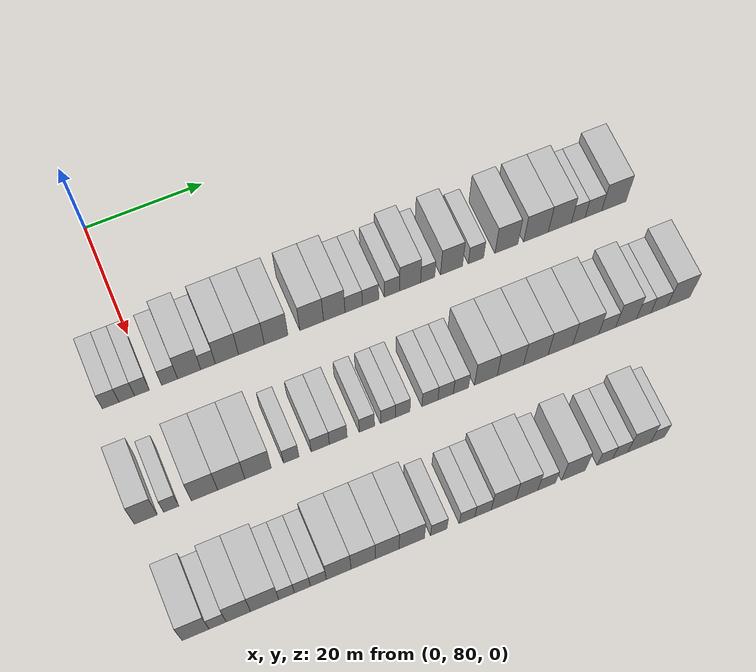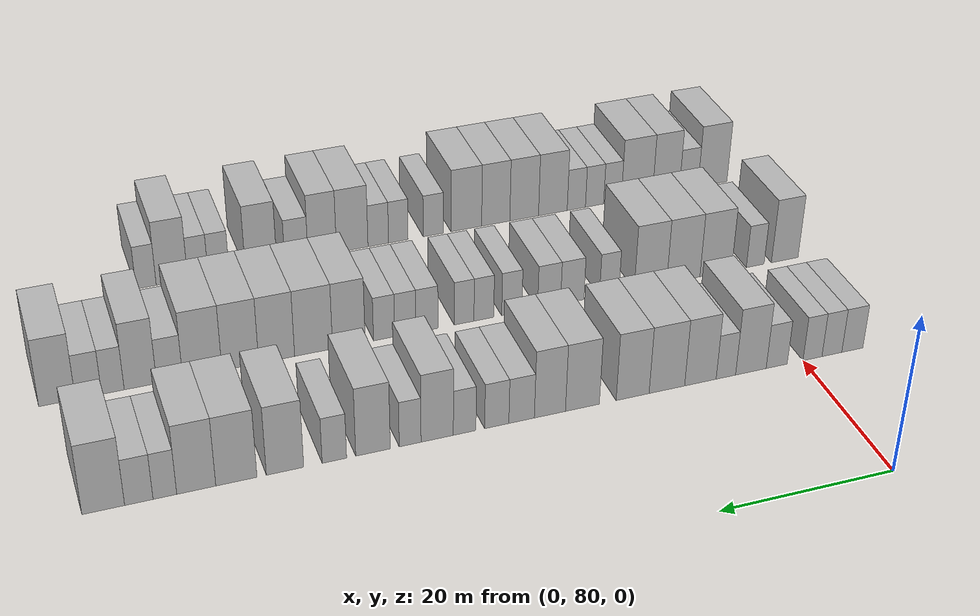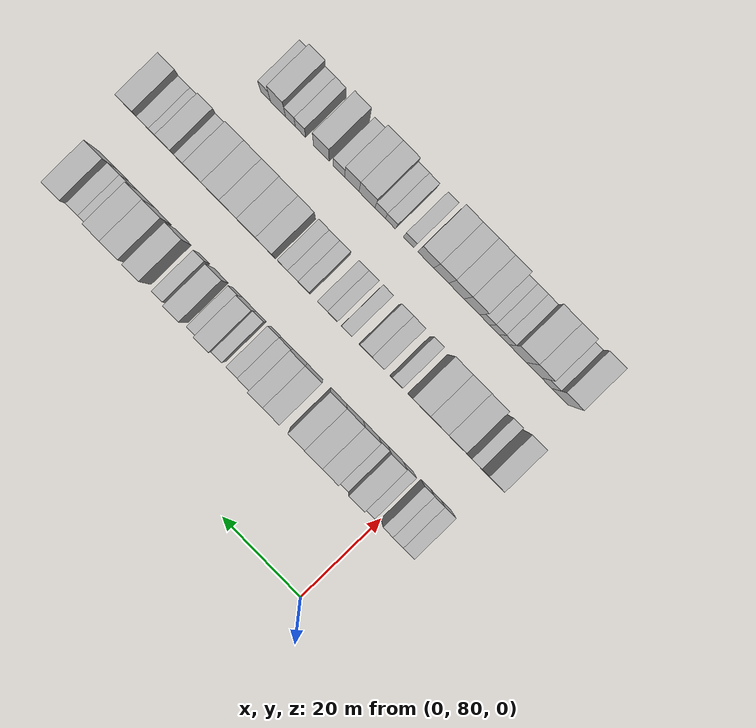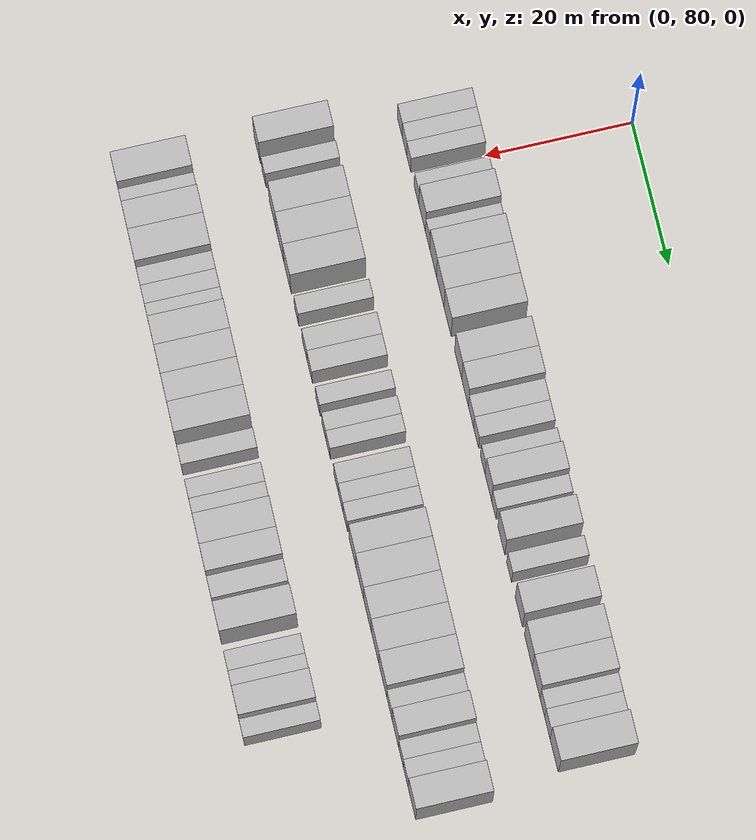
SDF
<sdf version="1.6">
 <world name="default">
  <model name="building_108">
   <static>1</static>
   <pose>25.0000 73.7068 0 0.000000 0.000000 0.000000</pose>
   <link name="link">
    <pose>0 0 3.00 0 0 0</pose>
    <collision name="collision"><geometry><box><size>10.0000 2.7107 6.0000</size></box></geometry></collision>
    <visual name="visual">
     <cast_shadows>0</cast_shadows>
     <geometry><box><size>10.0000 2.7107 6.0000</size></box></geometry>
     <material>
      <script>
       <uri>model://HANNAS_wall/materials/scripts</uri>
       <uri>model://HANNAS_wall/materials/textures</uri>
       <name>vrc/HANNAS_wall</name>
      </script>
     </material>
    </visual>
   </link>
  </model>
  <model name="building_109">
   <static>1</static>
   <pose>25.0000 76.3299 0 0.000000 0.000000 0.000000</pose>
   <link name="link">
    <pose>0 0 3.00 0 0 0</pose>
    <collision name="collision"><geometry><box><size>10.0000 2.5353 6.0000</size></box></geometry></collision>
    <visual name="visual">
     <cast_shadows>0</cast_shadows>
     <geometry><box><size>10.0000 2.5353 6.0000</size></box></geometry>
     <material>
      <script>
       <uri>model://HANNAS_wall/materials/scripts</uri>
       <uri>model://HANNAS_wall/materials/textures</uri>
       <name>vrc/HANNAS_wall</name>
      </script>
     </material>
    </visual>
   </link>
  </model>
  <model name="building_110">
   <static>1</static>
   <pose>25.0000 78.8004 0 0.000000 0.000000 0.000000</pose>
   <link name="link">
    <pose>0 0 3.00 0 0 0</pose>
    <collision name="collision"><geometry><box><size>10.0000 2.4057 6.0000</size></box></geometry></collision>
    <visual name="visual">
     <cast_shadows>0</cast_shadows>
     <geometry><box><size>10.0000 2.4057 6.0000</size></box></geometry>
     <material>
      <script>
       <uri>model://HANNAS_wall/materials/scripts</uri>
       <uri>model://HANNAS_wall/materials/textures</uri>
       <name>vrc/HANNAS_wall</name>
      </script>
     </material>
    </visual>
   </link>
  </model>
  <model name="building_111">
   <static>1</static>
   <pose>25.0000 83.3237 0 0.000000 0.000000 0.000000</pose>
   <link name="link">
    <pose>0 0 3.00 0 0 0</pose>
    <collision name="collision"><geometry><box><size>10.0000 2.6409 6.0000</size></box></geometry></collision>
    <visual name="visual">
     <cast_shadows>0</cast_shadows>
     <geometry><box><size>10.0000 2.6409 6.0000</size></box></geometry>
     <material>
      <script>
       <uri>model://HANNAS_wall/materials/scripts</uri>
       <uri>model://HANNAS_wall/materials/textures</uri>
       <name>vrc/HANNAS_wall</name>
      </script>
     </material>
    </visual>
   </link>
  </model>
  <model name="building_112">
   <static>1</static>
   <pose>25.0000 86.5483 0 0.000000 0.000000 0.000000</pose>
   <link name="link">
    <pose>0 0 4.50 0 0 0</pose>
    <collision name="collision"><geometry><box><size>10.0000 3.8083 9.0000</size></box></geometry></collision>
    <visual name="visual">
     <cast_shadows>0</cast_shadows>
     <geometry><box><size>10.0000 3.8083 9.0000</size></box></geometry>
     <material>
      <script>
       <uri>model://HANNAS_wall/materials/scripts</uri>
       <uri>model://HANNAS_wall/materials/textures</uri>
       <name>vrc/HANNAS_wall</name>
      </script>
     </material>
    </visual>
   </link>
  </model>
  <model name="building_113">
   <static>1</static>
   <pose>25.0000 89.6528 0 0.000000 0.000000 0.000000</pose>
   <link name="link">
    <pose>0 0 3.00 0 0 0</pose>
    <collision name="collision"><geometry><box><size>10.0000 2.4007 6.0000</size></box></geometry></collision>
    <visual name="visual">
     <cast_shadows>0</cast_shadows>
     <geometry><box><size>10.0000 2.4007 6.0000</size></box></geometry>
     <material>
      <script>
       <uri>model://HANNAS_wall/materials/scripts</uri>
       <uri>model://HANNAS_wall/materials/textures</uri>
       <name>vrc/HANNAS_wall</name>
      </script>
     </material>
    </visual>
   </link>
  </model>
  <model name="building_114">
   <static>1</static>
   <pose>25.0000 92.7837 0 0.000000 0.000000 0.000000</pose>
   <link name="link">
    <pose>0 0 4.50 0 0 0</pose>
    <collision name="collision"><geometry><box><size>10.0000 3.8611 9.0000</size></box></geometry></collision>
    <visual name="visual">
     <cast_shadows>0</cast_shadows>
     <geometry><box><size>10.0000 3.8611 9.0000</size></box></geometry>
     <material>
      <script>
       <uri>model://HANNAS_wall/materials/scripts</uri>
       <uri>model://HANNAS_wall/materials/textures</uri>
       <name>vrc/HANNAS_wall</name>
      </script>
     </material>
    </visual>
   </link>
  </model>
  <model name="building_115">
   <static>1</static>
   <pose>25.0000 96.8676 0 0.000000 0.000000 0.000000</pose>
   <link name="link">
    <pose>0 0 4.50 0 0 0</pose>
    <collision name="collision"><geometry><box><size>10.0000 4.3067 9.0000</size></box></geometry></collision>
    <visual name="visual">
     <cast_shadows>0</cast_shadows>
     <geometry><box><size>10.0000 4.3067 9.0000</size></box></geometry>
     <material>
      <script>
       <uri>model://HANNAS_wall/materials/scripts</uri>
       <uri>model://HANNAS_wall/materials/textures</uri>
       <name>vrc/HANNAS_wall</name>
      </script>
     </material>
    </visual>
   </link>
  </model>
  <model name="building_116">
   <static>1</static>
   <pose>25.0000 100.9973 0 0.000000 0.000000 0.000000</pose>
   <link name="link">
    <pose>0 0 4.50 0 0 0</pose>
    <collision name="collision"><geometry><box><size>10.0000 3.9528 9.0000</size></box></geometry></collision>
    <visual name="visual">
     <cast_shadows>0</cast_shadows>
     <geometry><box><size>10.0000 3.9528 9.0000</size></box></geometry>
     <material>
      <script>
       <uri>model://HANNAS_wall/materials/scripts</uri>
       <uri>model://HANNAS_wall/materials/textures</uri>
       <name>vrc/HANNAS_wall</name>
      </script>
     </material>
    </visual>
   </link>
  </model>
  <model name="building_117">
   <static>1</static>
   <pose>25.0000 106.9747 0 0.000000 0.000000 0.000000</pose>
   <link name="link">
    <pose>0 0 4.50 0 0 0</pose>
    <collision name="collision"><geometry><box><size>10.0000 4.0019 9.0000</size></box></geometry></collision>
    <visual name="visual">
     <cast_shadows>0</cast_shadows>
     <geometry><box><size>10.0000 4.0019 9.0000</size></box></geometry>
     <material>
      <script>
       <uri>model://HANNAS_wall/materials/scripts</uri>
       <uri>model://HANNAS_wall/materials/textures</uri>
       <name>vrc/HANNAS_wall</name>
      </script>
     </material>
    </visual>
   </link>
  </model>
  <model name="building_118">
   <static>1</static>
   <pose>25.0000 110.7939 0 0.000000 0.000000 0.000000</pose>
   <link name="link">
    <pose>0 0 4.50 0 0 0</pose>
    <collision name="collision"><geometry><box><size>10.0000 3.6364 9.0000</size></box></geometry></collision>
    <visual name="visual">
     <cast_shadows>0</cast_shadows>
     <geometry><box><size>10.0000 3.6364 9.0000</size></box></geometry>
     <material>
      <script>
       <uri>model://HANNAS_wall/materials/scripts</uri>
       <uri>model://HANNAS_wall/materials/textures</uri>
       <name>vrc/HANNAS_wall</name>
      </script>
     </material>
    </visual>
   </link>
  </model>
  <model name="building_119">
   <static>1</static>
   <pose>25.0000 114.0875 0 0.000000 0.000000 0.000000</pose>
   <link name="link">
    <pose>0 0 3.00 0 0 0</pose>
    <collision name="collision"><geometry><box><size>10.0000 2.9508 6.0000</size></box></geometry></collision>
    <visual name="visual">
     <cast_shadows>0</cast_shadows>
     <geometry><box><size>10.0000 2.9508 6.0000</size></box></geometry>
     <material>
      <script>
       <uri>model://HANNAS_wall/materials/scripts</uri>
       <uri>model://HANNAS_wall/materials/textures</uri>
       <name>vrc/HANNAS_wall</name>
      </script>
     </material>
    </visual>
   </link>
  </model>
  <model name="building_120">
   <static>1</static>
   <pose>25.0000 116.9517 0 0.000000 0.000000 0.000000</pose>
   <link name="link">
    <pose>0 0 3.00 0 0 0</pose>
    <collision name="collision"><geometry><box><size>10.0000 2.7777 6.0000</size></box></geometry></collision>
    <visual name="visual">
     <cast_shadows>0</cast_shadows>
     <geometry><box><size>10.0000 2.7777 6.0000</size></box></geometry>
     <material>
      <script>
       <uri>model://HANNAS_wall/materials/scripts</uri>
       <uri>model://HANNAS_wall/materials/textures</uri>
       <name>vrc/HANNAS_wall</name>
      </script>
     </material>
    </visual>
   </link>
  </model>
  <model name="building_121">
   <static>1</static>
   <pose>25.0000 120.6244 0 0.000000 0.000000 0.000000</pose>
   <link name="link">
    <pose>0 0 3.00 0 0 0</pose>
    <collision name="collision"><geometry><box><size>10.0000 2.5677 6.0000</size></box></geometry></collision>
    <visual name="visual">
     <cast_shadows>0</cast_shadows>
     <geometry><box><size>10.0000 2.5677 6.0000</size></box></geometry>
     <material>
      <script>
       <uri>model://HANNAS_wall/materials/scripts</uri>
       <uri>model://HANNAS_wall/materials/textures</uri>
       <name>vrc/HANNAS_wall</name>
      </script>
     </material>
    </visual>
   </link>
  </model>
  <model name="building_122">
   <static>1</static>
   <pose>25.0000 123.7289 0 0.000000 0.000000 0.000000</pose>
   <link name="link">
    <pose>0 0 4.50 0 0 0</pose>
    <collision name="collision"><geometry><box><size>10.0000 3.6414 9.0000</size></box></geometry></collision>
    <visual name="visual">
     <cast_shadows>0</cast_shadows>
     <geometry><box><size>10.0000 3.6414 9.0000</size></box></geometry>
     <material>
      <script>
       <uri>model://HANNAS_wall/materials/scripts</uri>
       <uri>model://HANNAS_wall/materials/textures</uri>
       <name>vrc/HANNAS_wall</name>
      </script>
     </material>
    </visual>
   </link>
  </model>
  <model name="building_123">
   <static>1</static>
   <pose>25.0000 126.7699 0 0.000000 0.000000 0.000000</pose>
   <link name="link">
    <pose>0 0 3.00 0 0 0</pose>
    <collision name="collision"><geometry><box><size>10.0000 2.4405 6.0000</size></box></geometry></collision>
    <visual name="visual">
     <cast_shadows>0</cast_shadows>
     <geometry><box><size>10.0000 2.4405 6.0000</size></box></geometry>
     <material>
      <script>
       <uri>model://HANNAS_wall/materials/scripts</uri>
       <uri>model://HANNAS_wall/materials/textures</uri>
       <name>vrc/HANNAS_wall</name>
      </script>
     </material>
    </visual>
   </link>
  </model>
  <model name="building_124">
   <static>1</static>
   <pose>25.0000 130.9013 0 0.000000 0.000000 0.000000</pose>
   <link name="link">
    <pose>0 0 4.50 0 0 0</pose>
    <collision name="collision"><geometry><box><size>10.0000 3.8223 9.0000</size></box></geometry></collision>
    <visual name="visual">
     <cast_shadows>0</cast_shadows>
     <geometry><box><size>10.0000 3.8223 9.0000</size></box></geometry>
     <material>
      <script>
       <uri>model://HANNAS_wall/materials/scripts</uri>
       <uri>model://HANNAS_wall/materials/textures</uri>
       <name>vrc/HANNAS_wall</name>
      </script>
     </material>
    </visual>
   </link>
  </model>
  <model name="building_125">
   <static>1</static>
   <pose>25.0000 135.1494 0 0.000000 0.000000 0.000000</pose>
   <link name="link">
    <pose>0 0 3.00 0 0 0</pose>
    <collision name="collision"><geometry><box><size>10.0000 2.6740 6.0000</size></box></geometry></collision>
    <visual name="visual">
     <cast_shadows>0</cast_shadows>
     <geometry><box><size>10.0000 2.6740 6.0000</size></box></geometry>
     <material>
      <script>
       <uri>model://HANNAS_wall/materials/scripts</uri>
       <uri>model://HANNAS_wall/materials/textures</uri>
       <name>vrc/HANNAS_wall</name>
      </script>
     </material>
    </visual>
   </link>
  </model>
  <model name="building_126">
   <static>1</static>
   <pose>25.0000 140.5015 0 0.000000 0.000000 0.000000</pose>
   <link name="link">
    <pose>0 0 4.50 0 0 0</pose>
    <collision name="collision"><geometry><box><size>10.0000 4.0302 9.0000</size></box></geometry></collision>
    <visual name="visual">
     <cast_shadows>0</cast_shadows>
     <geometry><box><size>10.0000 4.0302 9.0000</size></box></geometry>
     <material>
      <script>
       <uri>model://HANNAS_wall/materials/scripts</uri>
       <uri>model://HANNAS_wall/materials/textures</uri>
       <name>vrc/HANNAS_wall</name>
      </script>
     </material>
    </visual>
   </link>
  </model>
  <model name="building_127">
   <static>1</static>
   <pose>25.0000 145.7011 0 0.000000 0.000000 0.000000</pose>
   <link name="link">
    <pose>0 0 4.50 0 0 0</pose>
    <collision name="collision"><geometry><box><size>10.0000 4.3690 9.0000</size></box></geometry></collision>
    <visual name="visual">
     <cast_shadows>0</cast_shadows>
     <geometry><box><size>10.0000 4.3690 9.0000</size></box></geometry>
     <material>
      <script>
       <uri>model://HANNAS_wall/materials/scripts</uri>
       <uri>model://HANNAS_wall/materials/textures</uri>
       <name>vrc/HANNAS_wall</name>
      </script>
     </material>
    </visual>
   </link>
  </model>
  <model name="building_128">
   <static>1</static>
   <pose>25.0000 149.9332 0 0.000000 0.000000 0.000000</pose>
   <link name="link">
    <pose>0 0 4.50 0 0 0</pose>
    <collision name="collision"><geometry><box><size>10.0000 4.0951 9.0000</size></box></geometry></collision>
    <visual name="visual">
     <cast_shadows>0</cast_shadows>
     <geometry><box><size>10.0000 4.0951 9.0000</size></box></geometry>
     <material>
      <script>
       <uri>model://HANNAS_wall/materials/scripts</uri>
       <uri>model://HANNAS_wall/materials/textures</uri>
       <name>vrc/HANNAS_wall</name>
      </script>
     </material>
    </visual>
   </link>
  </model>
  <model name="building_129">
   <static>1</static>
   <pose>25.0000 153.2146 0 0.000000 0.000000 0.000000</pose>
   <link name="link">
    <pose>0 0 3.00 0 0 0</pose>
    <collision name="collision"><geometry><box><size>10.0000 2.4677 6.0000</size></box></geometry></collision>
    <visual name="visual">
     <cast_shadows>0</cast_shadows>
     <geometry><box><size>10.0000 2.4677 6.0000</size></box></geometry>
     <material>
      <script>
       <uri>model://HANNAS_wall/materials/scripts</uri>
       <uri>model://HANNAS_wall/materials/textures</uri>
       <name>vrc/HANNAS_wall</name>
      </script>
     </material>
    </visual>
   </link>
  </model>
  <model name="building_130">
   <static>1</static>
   <pose>25.0000 155.9123 0 0.000000 0.000000 0.000000</pose>
   <link name="link">
    <pose>0 0 3.00 0 0 0</pose>
    <collision name="collision"><geometry><box><size>10.0000 2.9278 6.0000</size></box></geometry></collision>
    <visual name="visual">
     <cast_shadows>0</cast_shadows>
     <geometry><box><size>10.0000 2.9278 6.0000</size></box></geometry>
     <material>
      <script>
       <uri>model://HANNAS_wall/materials/scripts</uri>
       <uri>model://HANNAS_wall/materials/textures</uri>
       <name>vrc/HANNAS_wall</name>
      </script>
     </material>
    </visual>
   </link>
  </model>
  <model name="building_131">
   <static>1</static>
   <pose>25.0000 159.5627 0 0.000000 0.000000 0.000000</pose>
   <link name="link">
    <pose>0 0 4.50 0 0 0</pose>
    <collision name="collision"><geometry><box><size>10.0000 4.3728 9.0000</size></box></geometry></collision>
    <visual name="visual">
     <cast_shadows>0</cast_shadows>
     <geometry><box><size>10.0000 4.3728 9.0000</size></box></geometry>
     <material>
      <script>
       <uri>model://HANNAS_wall/materials/scripts</uri>
       <uri>model://HANNAS_wall/materials/textures</uri>
       <name>vrc/HANNAS_wall</name>
      </script>
     </material>
    </visual>
   </link>
  </model>
  <model name="building_280">
   <static>1</static>
   <pose>44.0000 72.5005 0 0.000000 0.000000 0.000000</pose>
   <link name="link">
    <pose>0 0 4.50 0 0 0</pose>
    <collision name="collision"><geometry><box><size>10.0000 3.6355 9.0000</size></box></geometry></collision>
    <visual name="visual">
     <cast_shadows>0</cast_shadows>
     <geometry><box><size>10.0000 3.6355 9.0000</size></box></geometry>
     <material>
      <script>
       <uri>model://HANNAS_wall/materials/scripts</uri>
       <uri>model://HANNAS_wall/materials/textures</uri>
       <name>vrc/HANNAS_wall</name>
      </script>
     </material>
    </visual>
   </link>
  </model>
  <model name="building_281">
   <static>1</static>
   <pose>44.0000 76.5206 0 0.000000 0.000000 0.000000</pose>
   <link name="link">
    <pose>0 0 3.00 0 0 0</pose>
    <collision name="collision"><geometry><box><size>10.0000 2.4048 6.0000</size></box></geometry></collision>
    <visual name="visual">
     <cast_shadows>0</cast_shadows>
     <geometry><box><size>10.0000 2.4048 6.0000</size></box></geometry>
     <material>
      <script>
       <uri>model://HANNAS_wall/materials/scripts</uri>
       <uri>model://HANNAS_wall/materials/textures</uri>
       <name>vrc/HANNAS_wall</name>
      </script>
     </material>
    </visual>
   </link>
  </model>
  <model name="building_282">
   <static>1</static>
   <pose>44.0000 81.8365 0 0.000000 0.000000 0.000000</pose>
   <link name="link">
    <pose>0 0 4.50 0 0 0</pose>
    <collision name="collision"><geometry><box><size>10.0000 4.2271 9.0000</size></box></geometry></collision>
    <visual name="visual">
     <cast_shadows>0</cast_shadows>
     <geometry><box><size>10.0000 4.2271 9.0000</size></box></geometry>
     <material>
      <script>
       <uri>model://HANNAS_wall/materials/scripts</uri>
       <uri>model://HANNAS_wall/materials/textures</uri>
       <name>vrc/HANNAS_wall</name>
      </script>
     </material>
    </visual>
   </link>
  </model>
  <model name="building_283">
   <static>1</static>
   <pose>44.0000 86.1458 0 0.000000 0.000000 0.000000</pose>
   <link name="link">
    <pose>0 0 4.50 0 0 0</pose>
    <collision name="collision"><geometry><box><size>10.0000 4.3913 9.0000</size></box></geometry></collision>
    <visual name="visual">
     <cast_shadows>0</cast_shadows>
     <geometry><box><size>10.0000 4.3913 9.0000</size></box></geometry>
     <material>
      <script>
       <uri>model://HANNAS_wall/materials/scripts</uri>
       <uri>model://HANNAS_wall/materials/textures</uri>
       <name>vrc/HANNAS_wall</name>
      </script>
     </material>
    </visual>
   </link>
  </model>
  <model name="building_284">
   <static>1</static>
   <pose>44.0000 90.4707 0 0.000000 0.000000 0.000000</pose>
   <link name="link">
    <pose>0 0 4.50 0 0 0</pose>
    <collision name="collision"><geometry><box><size>10.0000 4.2586 9.0000</size></box></geometry></collision>
    <visual name="visual">
     <cast_shadows>0</cast_shadows>
     <geometry><box><size>10.0000 4.2586 9.0000</size></box></geometry>
     <material>
      <script>
       <uri>model://HANNAS_wall/materials/scripts</uri>
       <uri>model://HANNAS_wall/materials/textures</uri>
       <name>vrc/HANNAS_wall</name>
      </script>
     </material>
    </visual>
   </link>
  </model>
  <model name="building_285">
   <static>1</static>
   <pose>44.0000 95.8546 0 0.000000 0.000000 0.000000</pose>
   <link name="link">
    <pose>0 0 3.00 0 0 0</pose>
    <collision name="collision"><geometry><box><size>10.0000 2.5091 6.0000</size></box></geometry></collision>
    <visual name="visual">
     <cast_shadows>0</cast_shadows>
     <geometry><box><size>10.0000 2.5091 6.0000</size></box></geometry>
     <material>
      <script>
       <uri>model://HANNAS_wall/materials/scripts</uri>
       <uri>model://HANNAS_wall/materials/textures</uri>
       <name>vrc/HANNAS_wall</name>
      </script>
     </material>
    </visual>
   </link>
  </model>
  <model name="building_286">
   <static>1</static>
   <pose>44.0000 100.6001 0 0.000000 0.000000 0.000000</pose>
   <link name="link">
    <pose>0 0 3.00 0 0 0</pose>
    <collision name="collision"><geometry><box><size>10.0000 2.9819 6.0000</size></box></geometry></collision>
    <visual name="visual">
     <cast_shadows>0</cast_shadows>
     <geometry><box><size>10.0000 2.9819 6.0000</size></box></geometry>
     <material>
      <script>
       <uri>model://HANNAS_wall/materials/scripts</uri>
       <uri>model://HANNAS_wall/materials/textures</uri>
       <name>vrc/HANNAS_wall</name>
      </script>
     </material>
    </visual>
   </link>
  </model>
  <model name="building_287">
   <static>1</static>
   <pose>44.0000 103.5478 0 0.000000 0.000000 0.000000</pose>
   <link name="link">
    <pose>0 0 3.00 0 0 0</pose>
    <collision name="collision"><geometry><box><size>10.0000 2.9135 6.0000</size></box></geometry></collision>
    <visual name="visual">
     <cast_shadows>0</cast_shadows>
     <geometry><box><size>10.0000 2.9135 6.0000</size></box></geometry>
     <material>
      <script>
       <uri>model://HANNAS_wall/materials/scripts</uri>
       <uri>model://HANNAS_wall/materials/textures</uri>
       <name>vrc/HANNAS_wall</name>
      </script>
     </material>
    </visual>
   </link>
  </model>
  <model name="building_288">
   <static>1</static>
   <pose>44.0000 108.2622 0 0.000000 0.000000 0.000000</pose>
   <link name="link">
    <pose>0 0 3.00 0 0 0</pose>
    <collision name="collision"><geometry><box><size>10.0000 2.5154 6.0000</size></box></geometry></collision>
    <visual name="visual">
     <cast_shadows>0</cast_shadows>
     <geometry><box><size>10.0000 2.5154 6.0000</size></box></geometry>
     <material>
      <script>
       <uri>model://HANNAS_wall/materials/scripts</uri>
       <uri>model://HANNAS_wall/materials/textures</uri>
       <name>vrc/HANNAS_wall</name>
      </script>
     </material>
    </visual>
   </link>
  </model>
  <model name="building_289">
   <static>1</static>
   <pose>44.0000 111.7478 0 0.000000 0.000000 0.000000</pose>
   <link name="link">
    <pose>0 0 3.00 0 0 0</pose>
    <collision name="collision"><geometry><box><size>10.0000 2.4559 6.0000</size></box></geometry></collision>
    <visual name="visual">
     <cast_shadows>0</cast_shadows>
     <geometry><box><size>10.0000 2.4559 6.0000</size></box></geometry>
     <material>
      <script>
       <uri>model://HANNAS_wall/materials/scripts</uri>
       <uri>model://HANNAS_wall/materials/textures</uri>
       <name>vrc/HANNAS_wall</name>
      </script>
     </material>
    </visual>
   </link>
  </model>
  <model name="building_290">
   <static>1</static>
   <pose>44.0000 114.1933 0 0.000000 0.000000 0.000000</pose>
   <link name="link">
    <pose>0 0 3.00 0 0 0</pose>
    <collision name="collision"><geometry><box><size>10.0000 2.4350 6.0000</size></box></geometry></collision>
    <visual name="visual">
     <cast_shadows>0</cast_shadows>
     <geometry><box><size>10.0000 2.4350 6.0000</size></box></geometry>
     <material>
      <script>
       <uri>model://HANNAS_wall/materials/scripts</uri>
       <uri>model://HANNAS_wall/materials/textures</uri>
       <name>vrc/HANNAS_wall</name>
      </script>
     </material>
    </visual>
   </link>
  </model>
  <model name="building_291">
   <static>1</static>
   <pose>44.0000 118.7569 0 0.000000 0.000000 0.000000</pose>
   <link name="link">
    <pose>0 0 3.00 0 0 0</pose>
    <collision name="collision"><geometry><box><size>10.0000 2.6921 6.0000</size></box></geometry></collision>
    <visual name="visual">
     <cast_shadows>0</cast_shadows>
     <geometry><box><size>10.0000 2.6921 6.0000</size></box></geometry>
     <material>
      <script>
       <uri>model://HANNAS_wall/materials/scripts</uri>
       <uri>model://HANNAS_wall/materials/textures</uri>
       <name>vrc/HANNAS_wall</name>
      </script>
     </material>
    </visual>
   </link>
  </model>
  <model name="building_292">
   <static>1</static>
   <pose>44.0000 121.3943 0 0.000000 0.000000 0.000000</pose>
   <link name="link">
    <pose>0 0 3.00 0 0 0</pose>
    <collision name="collision"><geometry><box><size>10.0000 2.5827 6.0000</size></box></geometry></collision>
    <visual name="visual">
     <cast_shadows>0</cast_shadows>
     <geometry><box><size>10.0000 2.5827 6.0000</size></box></geometry>
     <material>
      <script>
       <uri>model://HANNAS_wall/materials/scripts</uri>
       <uri>model://HANNAS_wall/materials/textures</uri>
       <name>vrc/HANNAS_wall</name>
      </script>
     </material>
    </visual>
   </link>
  </model>
  <model name="building_293">
   <static>1</static>
   <pose>44.0000 123.9598 0 0.000000 0.000000 0.000000</pose>
   <link name="link">
    <pose>0 0 3.00 0 0 0</pose>
    <collision name="collision"><geometry><box><size>10.0000 2.5484 6.0000</size></box></geometry></collision>
    <visual name="visual">
     <cast_shadows>0</cast_shadows>
     <geometry><box><size>10.0000 2.5484 6.0000</size></box></geometry>
     <material>
      <script>
       <uri>model://HANNAS_wall/materials/scripts</uri>
       <uri>model://HANNAS_wall/materials/textures</uri>
       <name>vrc/HANNAS_wall</name>
      </script>
     </material>
    </visual>
   </link>
  </model>
  <model name="building_294">
   <static>1</static>
   <pose>44.0000 128.1755 0 0.000000 0.000000 0.000000</pose>
   <link name="link">
    <pose>0 0 4.50 0 0 0</pose>
    <collision name="collision"><geometry><box><size>10.0000 3.8830 9.0000</size></box></geometry></collision>
    <visual name="visual">
     <cast_shadows>0</cast_shadows>
     <geometry><box><size>10.0000 3.8830 9.0000</size></box></geometry>
     <material>
      <script>
       <uri>model://HANNAS_wall/materials/scripts</uri>
       <uri>model://HANNAS_wall/materials/textures</uri>
       <name>vrc/HANNAS_wall</name>
      </script>
     </material>
    </visual>
   </link>
  </model>
  <model name="building_295">
   <static>1</static>
   <pose>44.0000 132.3570 0 0.000000 0.000000 0.000000</pose>
   <link name="link">
    <pose>0 0 4.50 0 0 0</pose>
    <collision name="collision"><geometry><box><size>10.0000 4.4799 9.0000</size></box></geometry></collision>
    <visual name="visual">
     <cast_shadows>0</cast_shadows>
     <geometry><box><size>10.0000 4.4799 9.0000</size></box></geometry>
     <material>
      <script>
       <uri>model://HANNAS_wall/materials/scripts</uri>
       <uri>model://HANNAS_wall/materials/textures</uri>
       <name>vrc/HANNAS_wall</name>
      </script>
     </material>
    </visual>
   </link>
  </model>
  <model name="building_296">
   <static>1</static>
   <pose>44.0000 136.6948 0 0.000000 0.000000 0.000000</pose>
   <link name="link">
    <pose>0 0 4.50 0 0 0</pose>
    <collision name="collision"><geometry><box><size>10.0000 4.1956 9.0000</size></box></geometry></collision>
    <visual name="visual">
     <cast_shadows>0</cast_shadows>
     <geometry><box><size>10.0000 4.1956 9.0000</size></box></geometry>
     <material>
      <script>
       <uri>model://HANNAS_wall/materials/scripts</uri>
       <uri>model://HANNAS_wall/materials/textures</uri>
       <name>vrc/HANNAS_wall</name>
      </script>
     </material>
    </visual>
   </link>
  </model>
  <model name="building_297">
   <static>1</static>
   <pose>44.0000 140.9111 0 0.000000 0.000000 0.000000</pose>
   <link name="link">
    <pose>0 0 4.50 0 0 0</pose>
    <collision name="collision"><geometry><box><size>10.0000 4.2370 9.0000</size></box></geometry></collision>
    <visual name="visual">
     <cast_shadows>0</cast_shadows>
     <geometry><box><size>10.0000 4.2370 9.0000</size></box></geometry>
     <material>
      <script>
       <uri>model://HANNAS_wall/materials/scripts</uri>
       <uri>model://HANNAS_wall/materials/textures</uri>
       <name>vrc/HANNAS_wall</name>
      </script>
     </material>
    </visual>
   </link>
  </model>
  <model name="building_298">
   <static>1</static>
   <pose>44.0000 145.2720 0 0.000000 0.000000 0.000000</pose>
   <link name="link">
    <pose>0 0 4.50 0 0 0</pose>
    <collision name="collision"><geometry><box><size>10.0000 4.4848 9.0000</size></box></geometry></collision>
    <visual name="visual">
     <cast_shadows>0</cast_shadows>
     <geometry><box><size>10.0000 4.4848 9.0000</size></box></geometry>
     <material>
      <script>
       <uri>model://HANNAS_wall/materials/scripts</uri>
       <uri>model://HANNAS_wall/materials/textures</uri>
       <name>vrc/HANNAS_wall</name>
      </script>
     </material>
    </visual>
   </link>
  </model>
  <model name="building_299">
   <static>1</static>
   <pose>44.0000 148.9852 0 0.000000 0.000000 0.000000</pose>
   <link name="link">
    <pose>0 0 3.00 0 0 0</pose>
    <collision name="collision"><geometry><box><size>10.0000 2.9415 6.0000</size></box></geometry></collision>
    <visual name="visual">
     <cast_shadows>0</cast_shadows>
     <geometry><box><size>10.0000 2.9415 6.0000</size></box></geometry>
     <material>
      <script>
       <uri>model://HANNAS_wall/materials/scripts</uri>
       <uri>model://HANNAS_wall/materials/textures</uri>
       <name>vrc/HANNAS_wall</name>
      </script>
     </material>
    </visual>
   </link>
  </model>
  <model name="building_300">
   <static>1</static>
   <pose>44.0000 152.2746 0 0.000000 0.000000 0.000000</pose>
   <link name="link">
    <pose>0 0 4.50 0 0 0</pose>
    <collision name="collision"><geometry><box><size>10.0000 3.6374 9.0000</size></box></geometry></collision>
    <visual name="visual">
     <cast_shadows>0</cast_shadows>
     <geometry><box><size>10.0000 3.6374 9.0000</size></box></geometry>
     <material>
      <script>
       <uri>model://HANNAS_wall/materials/scripts</uri>
       <uri>model://HANNAS_wall/materials/textures</uri>
       <name>vrc/HANNAS_wall</name>
      </script>
     </material>
    </visual>
   </link>
  </model>
  <model name="building_301">
   <static>1</static>
   <pose>44.0000 155.3535 0 0.000000 0.000000 0.000000</pose>
   <link name="link">
    <pose>0 0 3.00 0 0 0</pose>
    <collision name="collision"><geometry><box><size>10.0000 2.5203 6.0000</size></box></geometry></collision>
    <visual name="visual">
     <cast_shadows>0</cast_shadows>
     <geometry><box><size>10.0000 2.5203 6.0000</size></box></geometry>
     <material>
      <script>
       <uri>model://HANNAS_wall/materials/scripts</uri>
       <uri>model://HANNAS_wall/materials/textures</uri>
       <name>vrc/HANNAS_wall</name>
      </script>
     </material>
    </visual>
   </link>
  </model>
  <model name="building_302">
   <static>1</static>
   <pose>44.0000 158.0632 0 0.000000 0.000000 0.000000</pose>
   <link name="link">
    <pose>0 0 3.00 0 0 0</pose>
    <collision name="collision"><geometry><box><size>10.0000 2.8992 6.0000</size></box></geometry></collision>
    <visual name="visual">
     <cast_shadows>0</cast_shadows>
     <geometry><box><size>10.0000 2.8992 6.0000</size></box></geometry>
     <material>
      <script>
       <uri>model://HANNAS_wall/materials/scripts</uri>
       <uri>model://HANNAS_wall/materials/textures</uri>
       <name>vrc/HANNAS_wall</name>
      </script>
     </material>
    </visual>
   </link>
  </model>
  <model name="building_303">
   <static>1</static>
   <pose>44.0000 161.5219 0 0.000000 0.000000 0.000000</pose>
   <link name="link">
    <pose>0 0 4.50 0 0 0</pose>
    <collision name="collision"><geometry><box><size>10.0000 4.0182 9.0000</size></box></geometry></collision>
    <visual name="visual">
     <cast_shadows>0</cast_shadows>
     <geometry><box><size>10.0000 4.0182 9.0000</size></box></geometry>
     <material>
      <script>
       <uri>model://HANNAS_wall/materials/scripts</uri>
       <uri>model://HANNAS_wall/materials/textures</uri>
       <name>vrc/HANNAS_wall</name>
      </script>
     </material>
    </visual>
   </link>
  </model>
  <model name="building_452">
   <static>1</static>
   <pose>63.0000 73.2362 0 0.000000 0.000000 0.000000</pose>
   <link name="link">
    <pose>0 0 4.50 0 0 0</pose>
    <collision name="collision"><geometry><box><size>10.0000 4.1733 9.0000</size></box></geometry></collision>
    <visual name="visual">
     <cast_shadows>0</cast_shadows>
     <geometry><box><size>10.0000 4.1733 9.0000</size></box></geometry>
     <material>
      <script>
       <uri>model://HANNAS_wall/materials/scripts</uri>
       <uri>model://HANNAS_wall/materials/textures</uri>
       <name>vrc/HANNAS_wall</name>
      </script>
     </material>
    </visual>
   </link>
  </model>
  <model name="building_453">
   <static>1</static>
   <pose>63.0000 76.6540 0 0.000000 0.000000 0.000000</pose>
   <link name="link">
    <pose>0 0 3.00 0 0 0</pose>
    <collision name="collision"><geometry><box><size>10.0000 2.6624 6.0000</size></box></geometry></collision>
    <visual name="visual">
     <cast_shadows>0</cast_shadows>
     <geometry><box><size>10.0000 2.6624 6.0000</size></box></geometry>
     <material>
      <script>
       <uri>model://HANNAS_wall/materials/scripts</uri>
       <uri>model://HANNAS_wall/materials/textures</uri>
       <name>vrc/HANNAS_wall</name>
      </script>
     </material>
    </visual>
   </link>
  </model>
  <model name="building_454">
   <static>1</static>
   <pose>63.0000 79.8944 0 0.000000 0.000000 0.000000</pose>
   <link name="link">
    <pose>0 0 4.50 0 0 0</pose>
    <collision name="collision"><geometry><box><size>10.0000 3.8184 9.0000</size></box></geometry></collision>
    <visual name="visual">
     <cast_shadows>0</cast_shadows>
     <geometry><box><size>10.0000 3.8184 9.0000</size></box></geometry>
     <material>
      <script>
       <uri>model://HANNAS_wall/materials/scripts</uri>
       <uri>model://HANNAS_wall/materials/textures</uri>
       <name>vrc/HANNAS_wall</name>
      </script>
     </material>
    </visual>
   </link>
  </model>
  <model name="building_455">
   <static>1</static>
   <pose>63.0000 84.0074 0 0.000000 0.000000 0.000000</pose>
   <link name="link">
    <pose>0 0 4.50 0 0 0</pose>
    <collision name="collision"><geometry><box><size>10.0000 4.4075 9.0000</size></box></geometry></collision>
    <visual name="visual">
     <cast_shadows>0</cast_shadows>
     <geometry><box><size>10.0000 4.4075 9.0000</size></box></geometry>
     <material>
      <script>
       <uri>model://HANNAS_wall/materials/scripts</uri>
       <uri>model://HANNAS_wall/materials/textures</uri>
       <name>vrc/HANNAS_wall</name>
      </script>
     </material>
    </visual>
   </link>
  </model>
  <model name="building_456">
   <static>1</static>
   <pose>63.0000 87.4447 0 0.000000 0.000000 0.000000</pose>
   <link name="link">
    <pose>0 0 3.00 0 0 0</pose>
    <collision name="collision"><geometry><box><size>10.0000 2.4670 6.0000</size></box></geometry></collision>
    <visual name="visual">
     <cast_shadows>0</cast_shadows>
     <geometry><box><size>10.0000 2.4670 6.0000</size></box></geometry>
     <material>
      <script>
       <uri>model://HANNAS_wall/materials/scripts</uri>
       <uri>model://HANNAS_wall/materials/textures</uri>
       <name>vrc/HANNAS_wall</name>
      </script>
     </material>
    </visual>
   </link>
  </model>
  <model name="building_457">
   <static>1</static>
   <pose>63.0000 89.9429 0 0.000000 0.000000 0.000000</pose>
   <link name="link">
    <pose>0 0 3.00 0 0 0</pose>
    <collision name="collision"><geometry><box><size>10.0000 2.5295 6.0000</size></box></geometry></collision>
    <visual name="visual">
     <cast_shadows>0</cast_shadows>
     <geometry><box><size>10.0000 2.5295 6.0000</size></box></geometry>
     <material>
      <script>
       <uri>model://HANNAS_wall/materials/scripts</uri>
       <uri>model://HANNAS_wall/materials/textures</uri>
       <name>vrc/HANNAS_wall</name>
      </script>
     </material>
    </visual>
   </link>
  </model>
  <model name="building_458">
   <static>1</static>
   <pose>63.0000 92.4678 0 0.000000 0.000000 0.000000</pose>
   <link name="link">
    <pose>0 0 3.00 0 0 0</pose>
    <collision name="collision"><geometry><box><size>10.0000 2.5204 6.0000</size></box></geometry></collision>
    <visual name="visual">
     <cast_shadows>0</cast_shadows>
     <geometry><box><size>10.0000 2.5204 6.0000</size></box></geometry>
     <material>
      <script>
       <uri>model://HANNAS_wall/materials/scripts</uri>
       <uri>model://HANNAS_wall/materials/textures</uri>
       <name>vrc/HANNAS_wall</name>
      </script>
     </material>
    </visual>
   </link>
  </model>
  <model name="building_459">
   <static>1</static>
   <pose>63.0000 95.6936 0 0.000000 0.000000 0.000000</pose>
   <link name="link">
    <pose>0 0 4.50 0 0 0</pose>
    <collision name="collision"><geometry><box><size>10.0000 3.9311 9.0000</size></box></geometry></collision>
    <visual name="visual">
     <cast_shadows>0</cast_shadows>
     <geometry><box><size>10.0000 3.9311 9.0000</size></box></geometry>
     <material>
      <script>
       <uri>model://HANNAS_wall/materials/scripts</uri>
       <uri>model://HANNAS_wall/materials/textures</uri>
       <name>vrc/HANNAS_wall</name>
      </script>
     </material>
    </visual>
   </link>
  </model>
  <model name="building_460">
   <static>1</static>
   <pose>63.0000 99.6096 0 0.000000 0.000000 0.000000</pose>
   <link name="link">
    <pose>0 0 4.50 0 0 0</pose>
    <collision name="collision"><geometry><box><size>10.0000 3.9009 9.0000</size></box></geometry></collision>
    <visual name="visual">
     <cast_shadows>0</cast_shadows>
     <geometry><box><size>10.0000 3.9009 9.0000</size></box></geometry>
     <material>
      <script>
       <uri>model://HANNAS_wall/materials/scripts</uri>
       <uri>model://HANNAS_wall/materials/textures</uri>
       <name>vrc/HANNAS_wall</name>
      </script>
     </material>
    </visual>
   </link>
  </model>
  <model name="building_461">
   <static>1</static>
   <pose>63.0000 103.4574 0 0.000000 0.000000 0.000000</pose>
   <link name="link">
    <pose>0 0 4.50 0 0 0</pose>
    <collision name="collision"><geometry><box><size>10.0000 3.7947 9.0000</size></box></geometry></collision>
    <visual name="visual">
     <cast_shadows>0</cast_shadows>
     <geometry><box><size>10.0000 3.7947 9.0000</size></box></geometry>
     <material>
      <script>
       <uri>model://HANNAS_wall/materials/scripts</uri>
       <uri>model://HANNAS_wall/materials/textures</uri>
       <name>vrc/HANNAS_wall</name>
      </script>
     </material>
    </visual>
   </link>
  </model>
  <model name="building_462">
   <static>1</static>
   <pose>63.0000 107.4018 0 0.000000 0.000000 0.000000</pose>
   <link name="link">
    <pose>0 0 4.50 0 0 0</pose>
    <collision name="collision"><geometry><box><size>10.0000 4.0943 9.0000</size></box></geometry></collision>
    <visual name="visual">
     <cast_shadows>0</cast_shadows>
     <geometry><box><size>10.0000 4.0943 9.0000</size></box></geometry>
     <material>
      <script>
       <uri>model://HANNAS_wall/materials/scripts</uri>
       <uri>model://HANNAS_wall/materials/textures</uri>
       <name>vrc/HANNAS_wall</name>
      </script>
     </material>
    </visual>
   </link>
  </model>
  <model name="building_463">
   <static>1</static>
   <pose>63.0000 111.7808 0 0.000000 0.000000 0.000000</pose>
   <link name="link">
    <pose>0 0 3.00 0 0 0</pose>
    <collision name="collision"><geometry><box><size>10.0000 2.6637 6.0000</size></box></geometry></collision>
    <visual name="visual">
     <cast_shadows>0</cast_shadows>
     <geometry><box><size>10.0000 2.6637 6.0000</size></box></geometry>
     <material>
      <script>
       <uri>model://HANNAS_wall/materials/scripts</uri>
       <uri>model://HANNAS_wall/materials/textures</uri>
       <name>vrc/HANNAS_wall</name>
      </script>
     </material>
    </visual>
   </link>
  </model>
  <model name="building_464">
   <static>1</static>
   <pose>63.0000 116.3853 0 0.000000 0.000000 0.000000</pose>
   <link name="link">
    <pose>0 0 3.00 0 0 0</pose>
    <collision name="collision"><geometry><box><size>10.0000 2.5452 6.0000</size></box></geometry></collision>
    <visual name="visual">
     <cast_shadows>0</cast_shadows>
     <geometry><box><size>10.0000 2.5452 6.0000</size></box></geometry>
     <material>
      <script>
       <uri>model://HANNAS_wall/materials/scripts</uri>
       <uri>model://HANNAS_wall/materials/textures</uri>
       <name>vrc/HANNAS_wall</name>
      </script>
     </material>
    </visual>
   </link>
  </model>
  <model name="building_465">
   <static>1</static>
   <pose>63.0000 118.9952 0 0.000000 0.000000 0.000000</pose>
   <link name="link">
    <pose>0 0 3.00 0 0 0</pose>
    <collision name="collision"><geometry><box><size>10.0000 2.6745 6.0000</size></box></geometry></collision>
    <visual name="visual">
     <cast_shadows>0</cast_shadows>
     <geometry><box><size>10.0000 2.6745 6.0000</size></box></geometry>
     <material>
      <script>
       <uri>model://HANNAS_wall/materials/scripts</uri>
       <uri>model://HANNAS_wall/materials/textures</uri>
       <name>vrc/HANNAS_wall</name>
      </script>
     </material>
    </visual>
   </link>
  </model>
  <model name="building_466">
   <static>1</static>
   <pose>63.0000 122.3622 0 0.000000 0.000000 0.000000</pose>
   <link name="link">
    <pose>0 0 4.50 0 0 0</pose>
    <collision name="collision"><geometry><box><size>10.0000 4.0595 9.0000</size></box></geometry></collision>
    <visual name="visual">
     <cast_shadows>0</cast_shadows>
     <geometry><box><size>10.0000 4.0595 9.0000</size></box></geometry>
     <material>
      <script>
       <uri>model://HANNAS_wall/materials/scripts</uri>
       <uri>model://HANNAS_wall/materials/textures</uri>
       <name>vrc/HANNAS_wall</name>
      </script>
     </material>
    </visual>
   </link>
  </model>
  <model name="building_467">
   <static>1</static>
   <pose>63.0000 126.2098 0 0.000000 0.000000 0.000000</pose>
   <link name="link">
    <pose>0 0 4.50 0 0 0</pose>
    <collision name="collision"><geometry><box><size>10.0000 3.6356 9.0000</size></box></geometry></collision>
    <visual name="visual">
     <cast_shadows>0</cast_shadows>
     <geometry><box><size>10.0000 3.6356 9.0000</size></box></geometry>
     <material>
      <script>
       <uri>model://HANNAS_wall/materials/scripts</uri>
       <uri>model://HANNAS_wall/materials/textures</uri>
       <name>vrc/HANNAS_wall</name>
      </script>
     </material>
    </visual>
   </link>
  </model>
  <model name="building_468">
   <static>1</static>
   <pose>63.0000 129.5051 0 0.000000 0.000000 0.000000</pose>
   <link name="link">
    <pose>0 0 3.00 0 0 0</pose>
    <collision name="collision"><geometry><box><size>10.0000 2.9551 6.0000</size></box></geometry></collision>
    <visual name="visual">
     <cast_shadows>0</cast_shadows>
     <geometry><box><size>10.0000 2.9551 6.0000</size></box></geometry>
     <material>
      <script>
       <uri>model://HANNAS_wall/materials/scripts</uri>
       <uri>model://HANNAS_wall/materials/textures</uri>
       <name>vrc/HANNAS_wall</name>
      </script>
     </material>
    </visual>
   </link>
  </model>
  <model name="building_469">
   <static>1</static>
   <pose>63.0000 133.9637 0 0.000000 0.000000 0.000000</pose>
   <link name="link">
    <pose>0 0 4.50 0 0 0</pose>
    <collision name="collision"><geometry><box><size>10.0000 3.9620 9.0000</size></box></geometry></collision>
    <visual name="visual">
     <cast_shadows>0</cast_shadows>
     <geometry><box><size>10.0000 3.9620 9.0000</size></box></geometry>
     <material>
      <script>
       <uri>model://HANNAS_wall/materials/scripts</uri>
       <uri>model://HANNAS_wall/materials/textures</uri>
       <name>vrc/HANNAS_wall</name>
      </script>
     </material>
    </visual>
   </link>
  </model>
  <model name="building_470">
   <static>1</static>
   <pose>63.0000 139.2480 0 0.000000 0.000000 0.000000</pose>
   <link name="link">
    <pose>0 0 3.00 0 0 0</pose>
    <collision name="collision"><geometry><box><size>10.0000 2.6067 6.0000</size></box></geometry></collision>
    <visual name="visual">
     <cast_shadows>0</cast_shadows>
     <geometry><box><size>10.0000 2.6067 6.0000</size></box></geometry>
     <material>
      <script>
       <uri>model://HANNAS_wall/materials/scripts</uri>
       <uri>model://HANNAS_wall/materials/textures</uri>
       <name>vrc/HANNAS_wall</name>
      </script>
     </material>
    </visual>
   </link>
  </model>
  <model name="building_471">
   <static>1</static>
   <pose>63.0000 141.8030 0 0.000000 0.000000 0.000000</pose>
   <link name="link">
    <pose>0 0 3.00 0 0 0</pose>
    <collision name="collision"><geometry><box><size>10.0000 2.5034 6.0000</size></box></geometry></collision>
    <visual name="visual">
     <cast_shadows>0</cast_shadows>
     <geometry><box><size>10.0000 2.5034 6.0000</size></box></geometry>
     <material>
      <script>
       <uri>model://HANNAS_wall/materials/scripts</uri>
       <uri>model://HANNAS_wall/materials/textures</uri>
       <name>vrc/HANNAS_wall</name>
      </script>
     </material>
    </visual>
   </link>
  </model>
  <model name="building_472">
   <static>1</static>
   <pose>63.0000 144.9797 0 0.000000 0.000000 0.000000</pose>
   <link name="link">
    <pose>0 0 4.50 0 0 0</pose>
    <collision name="collision"><geometry><box><size>10.0000 3.8500 9.0000</size></box></geometry></collision>
    <visual name="visual">
     <cast_shadows>0</cast_shadows>
     <geometry><box><size>10.0000 3.8500 9.0000</size></box></geometry>
     <material>
      <script>
       <uri>model://HANNAS_wall/materials/scripts</uri>
       <uri>model://HANNAS_wall/materials/textures</uri>
       <name>vrc/HANNAS_wall</name>
      </script>
     </material>
    </visual>
   </link>
  </model>
  <model name="building_473">
   <static>1</static>
   <pose>63.0000 148.1339 0 0.000000 0.000000 0.000000</pose>
   <link name="link">
    <pose>0 0 3.00 0 0 0</pose>
    <collision name="collision"><geometry><box><size>10.0000 2.4583 6.0000</size></box></geometry></collision>
    <visual name="visual">
     <cast_shadows>0</cast_shadows>
     <geometry><box><size>10.0000 2.4583 6.0000</size></box></geometry>
     <material>
      <script>
       <uri>model://HANNAS_wall/materials/scripts</uri>
       <uri>model://HANNAS_wall/materials/textures</uri>
       <name>vrc/HANNAS_wall</name>
      </script>
     </material>
    </visual>
   </link>
  </model>
 </world>
</sdf>
